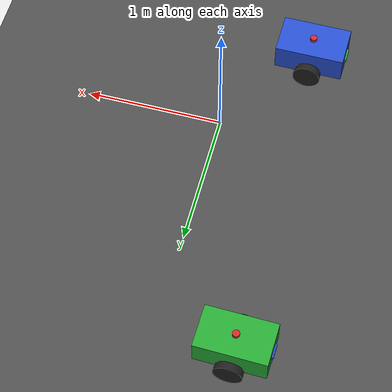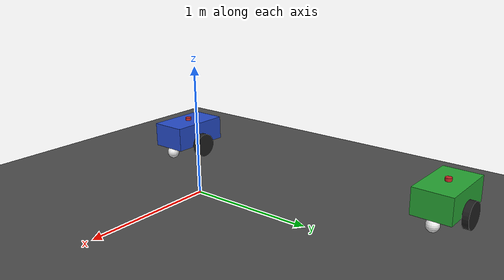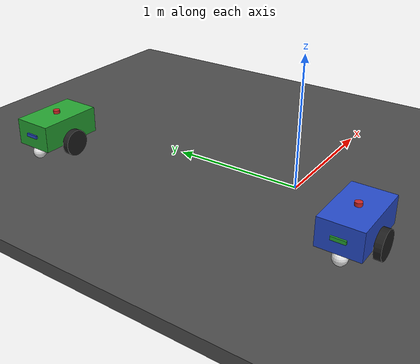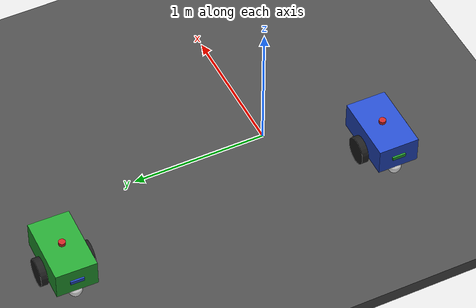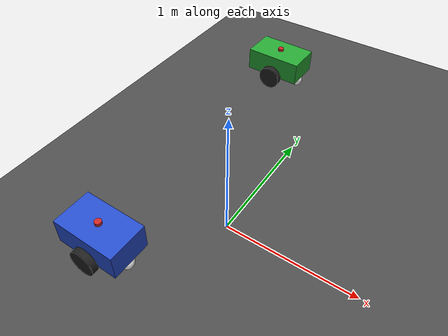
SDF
<sdf version="1.6">
 <world name="default">
  <light name="sun" type="directional">
   <pose>0 0 10 0 -0 0</pose>
   <diffuse>0.8 0.8 0.8 1</diffuse>
   <specular>0.2 0.2 0.2 1</specular>
   <attenuation>
    <range>1000</range>
    <constant>0.9</constant>
    <linear>0.01</linear>
    <quadratic>0.001</quadratic>
   </attenuation>
   <direction>-0.5 0.1 -0.9</direction>
  </light>
  <model name="ground_plane">
   <static>1</static>
   <link name="link">
    <collision name="collision">
     <geometry><plane><normal>0 0 1</normal><size>100 100</size></plane></geometry>
     <surface>
      <contact><collide_bitmask>65535</collide_bitmask></contact>
      <friction><ode><mu>100</mu><mu2>50</mu2></ode></friction>
     </surface>
    </collision>
    <visual name="visual">
     <cast_shadows>0</cast_shadows>
     <geometry><plane><normal>0 0 1</normal><size>100 100</size></plane></geometry>
     <material>
      <script><uri>file://media/materials/scripts/gazebo.material</uri><name>Gazebo/White</name></script>
     </material>
    </visual>
   </link>
  </model>
  <gravity>0 0 -9.8</gravity>
  <magnetic_field>6e-06 2.3e-05 -4.2e-05</magnetic_field>
  <atmosphere type="adiabatic"/>
  <physics name="default_physics" default="0" type="ode">
   <max_step_size>0.001</max_step_size>
   <real_time_factor>1</real_time_factor>
   <real_time_update_rate>1000</real_time_update_rate>
  </physics>
  <scene><ambient>0.4 0.4 0.4 1</ambient><background>0.7 0.7 0.7 1</background><shadows>1</shadows></scene>
  <spherical_coordinates>
   <surface_model>EARTH_WGS84</surface_model>
   <latitude_deg>0</latitude_deg>
   <longitude_deg>0</longitude_deg>
   <elevation>0</elevation>
   <heading_deg>0</heading_deg>
  </spherical_coordinates>
  <model name="egitim_robotu">
   <link name="base_footprint">
    <inertial>
     <pose>0.002427 0 0.002184 0 -0 0</pose>
     <mass>10.3</mass>
     <inertia>
      <ixx>0.110946</ixx>
      <ixy>0</ixy>
      <ixz>5.46117e-05</ixz>
      <iyy>0.25039</iyy>
      <iyz>0</iyz>
      <izz>0.289674</izz>
     </inertia>
    </inertial>
    <collision name="base_footprint_collision">
     <geometry><box><size>0.5 0.3 0.2</size></box></geometry>
    </collision>
    <collision name="base_footprint_fixed_joint_lump__camera_link_collision_1">
     <pose>0.25 0 0 0 -0 0</pose>
     <geometry><box><size>0.025 0.1 0.025</size></box></geometry>
    </collision>
    <collision name="base_footprint_fixed_joint_lump__laser_link_collision_2">
     <pose>0 0 0.1125 0 -0 0</pose>
     <geometry><cylinder><length>0.025</length><radius>0.025</radius></cylinder></geometry>
    </collision>
    <visual name="base_footprint_visual">
     <geometry><box><size>0.5 0.3 0.2</size></box></geometry>
     <material>
      <script><name>Gazebo/Blue</name><uri>file://media/materials/scripts/gazebo.material</uri></script>
     </material>
    </visual>
    <visual name="base_footprint_fixed_joint_lump__camera_link_visual_1">
     <pose>0.25 0 0 0 -0 0</pose>
     <geometry><box><size>0.025 0.1 0.025</size></box></geometry>
     <material>
      <script><name>Gazebo/Green</name><uri>file://media/materials/scripts/gazebo.material</uri></script>
     </material>
    </visual>
    <visual name="base_footprint_fixed_joint_lump__laser_link_visual_2">
     <pose>0 0 0.1125 0 -0 0</pose>
     <geometry><cylinder><length>0.025</length><radius>0.025</radius></cylinder></geometry>
     <material>
      <script><name>Gazebo/Red</name><uri>file://media/materials/scripts/gazebo.material</uri></script>
     </material>
    </visual>
    <sensor name="camera_link_camera" type="depth">
     <update_rate>20</update_rate>
     <camera name="__default__">
      <horizontal_fov>1.0472</horizontal_fov>
      <image><width>640</width><height>480</height><format>R8G8B8</format></image>
      <clip><near>0.05</near><far>3</far></clip>
     </camera>
     <plugin name="camera_link_controller" filename="libgazebo_ros_openni_kinect.so">
      <baseline>0.2</baseline>
      <alwaysOn>1</alwaysOn>
      <updateRate>1.0</updateRate>
      <imageTopicName>/camera/rgb/image_raw</imageTopicName>
      <cameraInfoTopicName>/camera/rgb/camera_info</cameraInfoTopicName>
      <depthImageTopicName>/camera/depth/image_raw</depthImageTopicName>
      <depthImageInfoTopicName>/camera/depth/camera_info</depthImageInfoTopicName>
      <pointCloudTopicName>/camera/depth/points</pointCloudTopicName>
      <frameName>camera_link</frameName>
      <pointCloudCutoff>0.5</pointCloudCutoff>
      <pointCloudCutoffMax>3.0</pointCloudCutoffMax>
      <distortionK1>0.00000001</distortionK1>
      <distortionK2>0.00000001</distortionK2>
      <distortionK3>0.00000001</distortionK3>
      <distortionT1>0.00000001</distortionT1>
      <distortionT2>0.00000001</distortionT2>
      <CxPrime>0</CxPrime>
      <Cx>0</Cx>
      <Cy>0</Cy>
      <focalLength>0</focalLength>
      <hackBaseline>0</hackBaseline>
      <robotNamespace>/</robotNamespace>
     </plugin>
     <pose>0.25 0 0 0 -0 0</pose>
    </sensor>
    <sensor name="head_hokuyo_sensor" type="gpu_ray">
     <visualize>0</visualize>
     <update_rate>40</update_rate>
     <ray>
      <scan>
       <horizontal>
        <samples>720</samples>
        <resolution>1</resolution>
        <min_angle>-3.1415</min_angle>
        <max_angle>3.1415</max_angle>
       </horizontal>
       <vertical><samples>1</samples><min_angle>0</min_angle><max_angle>0</max_angle></vertical>
      </scan>
      <range><min>0.1</min><max>10</max><resolution>0.01</resolution></range>
      <noise><type>gaussian</type><mean>0</mean><stddev>0.01</stddev></noise>
     </ray>
     <plugin name="gazebo_ros_head_hokuyo_controller" filename="libgazebo_ros_gpu_laser.so">
      <topicName>robot_1/laser/scan</topicName>
      <frameName>robot_1/laser_link</frameName>
      <robotNamespace>/</robotNamespace>
     </plugin>
     <pose>0 0 0.1125 0 -0 0</pose>
    </sensor>
   </link>
   <link name="caster_wheel_back_link">
    <pose>-0.2 0 -0.15 0 -0 0</pose>
    <inertial>
     <mass>0.05</mass>
     <inertia><ixx>5e-05</ixx><ixy>0</ixy><ixz>0</ixz><iyy>5e-05</iyy><iyz>0</iyz><izz>5e-05</izz></inertia>
    </inertial>
    <collision name="caster_wheel_back_link_collision">
     <geometry><sphere><radius>0.05</radius></sphere></geometry>
    </collision>
    <visual name="caster_wheel_back_link_visual">
     <geometry><sphere><radius>0.05</radius></sphere></geometry>
     <material>
      <script><name>Gazebo/White</name><uri>file://media/materials/scripts/gazebo.material</uri></script>
     </material>
    </visual>
   </link>
   <joint name="caster_wheel_back_base" type="revolute">
    <child>caster_wheel_back_link</child>
    <parent>base_footprint</parent>
    <axis>
     <xyz>1 1 1</xyz>
     <limit><lower>-1e+16</lower><upper>1e+16</upper></limit>
     <dynamics><spring_reference>0</spring_reference><spring_stiffness>0</spring_stiffness></dynamics>
     <use_parent_model_frame>0</use_parent_model_frame>
    </axis>
   </joint>
   <link name="caster_wheel_front_link">
    <pose>0.2 0 -0.15 0 -0 0</pose>
    <inertial>
     <mass>0.05</mass>
     <inertia><ixx>5e-05</ixx><ixy>0</ixy><ixz>0</ixz><iyy>5e-05</iyy><iyz>0</iyz><izz>5e-05</izz></inertia>
    </inertial>
    <collision name="caster_wheel_front_link_collision">
     <geometry><sphere><radius>0.05</radius></sphere></geometry>
    </collision>
    <visual name="caster_wheel_front_link_visual">
     <geometry><sphere><radius>0.05</radius></sphere></geometry>
     <material>
      <script><name>Gazebo/White</name><uri>file://media/materials/scripts/gazebo.material</uri></script>
     </material>
    </visual>
   </link>
   <joint name="caster_wheel_front_base" type="revolute">
    <child>caster_wheel_front_link</child>
    <parent>base_footprint</parent>
    <axis>
     <xyz>1 1 1</xyz>
     <limit><lower>-1e+16</lower><upper>1e+16</upper></limit>
     <dynamics><spring_reference>0</spring_reference><spring_stiffness>0</spring_stiffness></dynamics>
     <use_parent_model_frame>0</use_parent_model_frame>
    </axis>
   </joint>
   <link name="wheel_left_link">
    <pose>0 -0.175 -0.1 0 -0 0</pose>
    <inertial>
     <mass>0.5</mass>
     <inertia>
      <ixx>0.00135417</ixx>
      <ixy>0</ixy>
      <ixz>0</ixz>
      <iyy>0.00135417</iyy>
      <iyz>0</iyz>
      <izz>0.0025</izz>
     </inertia>
    </inertial>
    <collision name="wheel_left_link_collision">
     <pose>0 0 0 3.14159 1.57079 -1.57079</pose>
     <geometry><cylinder><length>0.05</length><radius>0.1</radius></cylinder></geometry>
    </collision>
    <visual name="wheel_left_link_visual">
     <pose>0 0 0 3.14159 1.57079 -1.57079</pose>
     <geometry><cylinder><length>0.05</length><radius>0.1</radius></cylinder></geometry>
     <material>
      <script><name>Gazebo/Black</name><uri>file://media/materials/scripts/gazebo.material</uri></script>
     </material>
    </visual>
   </link>
   <joint name="wheel_left_base" type="revolute">
    <child>wheel_left_link</child>
    <parent>base_footprint</parent>
    <axis>
     <xyz>0 1 0</xyz>
     <limit><lower>-1e+16</lower><upper>1e+16</upper></limit>
     <dynamics><spring_reference>0</spring_reference><spring_stiffness>0</spring_stiffness></dynamics>
     <use_parent_model_frame>0</use_parent_model_frame>
    </axis>
   </joint>
   <link name="wheel_right_link">
    <pose>0 0.175 -0.1 0 -0 0</pose>
    <inertial>
     <mass>0.5</mass>
     <inertia>
      <ixx>0.00135417</ixx>
      <ixy>0</ixy>
      <ixz>0</ixz>
      <iyy>0.00135417</iyy>
      <iyz>0</iyz>
      <izz>0.0025</izz>
     </inertia>
    </inertial>
    <collision name="wheel_right_link_collision">
     <pose>0 0 0 3.14159 1.57079 -1.57079</pose>
     <geometry><cylinder><length>0.05</length><radius>0.1</radius></cylinder></geometry>
    </collision>
    <visual name="wheel_right_link_visual">
     <pose>0 0 0 3.14159 1.57079 -1.57079</pose>
     <geometry><cylinder><length>0.05</length><radius>0.1</radius></cylinder></geometry>
     <material>
      <script><name>Gazebo/Black</name><uri>file://media/materials/scripts/gazebo.material</uri></script>
     </material>
    </visual>
   </link>
   <joint name="wheel_right_base" type="revolute">
    <child>wheel_right_link</child>
    <parent>base_footprint</parent>
    <axis>
     <xyz>0 1 0</xyz>
     <limit><lower>-1e+16</lower><upper>1e+16</upper></limit>
     <dynamics><spring_reference>0</spring_reference><spring_stiffness>0</spring_stiffness></dynamics>
     <use_parent_model_frame>0</use_parent_model_frame>
    </axis>
   </joint>
   <static>0</static>
   <plugin name="differential_drive_controller" filename="libgazebo_ros_diff_drive.so">
    <updateRate>10.0</updateRate>
    <leftJoint>wheel_left_base</leftJoint>
    <rightJoint>wheel_right_base</rightJoint>
    <wheelSeparation>0.35</wheelSeparation>
    <wheelDiameter>0.2</wheelDiameter>
    <wheelAcceleration>0.0</wheelAcceleration>
    <wheelTorque>5</wheelTorque>
    <commandTopic>robot_1/cmd_vel</commandTopic>
    <odometryTopic>robot_1/odom</odometryTopic>
    <odometryFrame>robot_1/odom</odometryFrame>
    <robotBaseFrame>base_footprint</robotBaseFrame>
    <odometrySource>1</odometrySource>
    <publishWheelTF>0</publishWheelTF>
    <publishOdom>1</publishOdom>
    <publishWheelJointState>0</publishWheelJointState>
    <legacyMode>1</legacyMode>
    <robotNamespace>/</robotNamespace>
   </plugin>
   <pose>-0.534705 -0.657038 0.250001 2e-06 2e-06 3.1341</pose>
  </model>
  <model name="egitim_robotu_2">
   <link name="base_footprint">
    <inertial>
     <pose>0.002427 0 0.002184 0 -0 0</pose>
     <mass>10.3</mass>
     <inertia>
      <ixx>0.110946</ixx>
      <ixy>0</ixy>
      <ixz>5.46117e-05</ixz>
      <iyy>0.25039</iyy>
      <iyz>0</iyz>
      <izz>0.289674</izz>
     </inertia>
    </inertial>
    <collision name="base_footprint_collision">
     <geometry><box><size>0.5 0.3 0.2</size></box></geometry>
    </collision>
    <collision name="base_footprint_fixed_joint_lump__camera_link_collision_1">
     <pose>0.25 0 0 0 -0 0</pose>
     <geometry><box><size>0.025 0.1 0.025</size></box></geometry>
    </collision>
    <collision name="base_footprint_fixed_joint_lump__laser_link_collision_2">
     <pose>0 0 0.1125 0 -0 0</pose>
     <geometry><cylinder><length>0.025</length><radius>0.025</radius></cylinder></geometry>
    </collision>
    <visual name="base_footprint_visual">
     <geometry><box><size>0.5 0.3 0.2</size></box></geometry>
     <material>
      <script><name>Gazebo/Green</name><uri>file://media/materials/scripts/gazebo.material</uri></script>
     </material>
    </visual>
    <visual name="base_footprint_fixed_joint_lump__camera_link_visual_1">
     <pose>0.25 0 0 0 -0 0</pose>
     <geometry><box><size>0.025 0.1 0.025</size></box></geometry>
     <material>
      <script><name>Gazebo/Blue</name><uri>file://media/materials/scripts/gazebo.material</uri></script>
     </material>
    </visual>
    <visual name="base_footprint_fixed_joint_lump__laser_link_visual_2">
     <pose>0 0 0.1125 0 -0 0</pose>
     <geometry><cylinder><length>0.025</length><radius>0.025</radius></cylinder></geometry>
     <material>
      <script><name>Gazebo/Red</name><uri>file://media/materials/scripts/gazebo.material</uri></script>
     </material>
    </visual>
    <sensor name="camera_link_camera" type="depth">
     <update_rate>20</update_rate>
     <camera name="__default__">
      <horizontal_fov>1.0472</horizontal_fov>
      <image><width>640</width><height>480</height><format>R8G8B8</format></image>
      <clip><near>0.05</near><far>3</far></clip>
     </camera>
     <plugin name="camera_link_controller" filename="libgazebo_ros_openni_kinect.so">
      <baseline>0.2</baseline>
      <alwaysOn>1</alwaysOn>
      <updateRate>1.0</updateRate>
      <imageTopicName>/camera/rgb/image_raw</imageTopicName>
      <cameraInfoTopicName>/camera/rgb/camera_info</cameraInfoTopicName>
      <depthImageTopicName>/camera/depth/image_raw</depthImageTopicName>
      <depthImageInfoTopicName>/camera/depth/camera_info</depthImageInfoTopicName>
      <pointCloudTopicName>/camera/depth/points</pointCloudTopicName>
      <frameName>camera_link</frameName>
      <pointCloudCutoff>0.5</pointCloudCutoff>
      <pointCloudCutoffMax>3.0</pointCloudCutoffMax>
      <distortionK1>0.00000001</distortionK1>
      <distortionK2>0.00000001</distortionK2>
      <distortionK3>0.00000001</distortionK3>
      <distortionT1>0.00000001</distortionT1>
      <distortionT2>0.00000001</distortionT2>
      <CxPrime>0</CxPrime>
      <Cx>0</Cx>
      <Cy>0</Cy>
      <focalLength>0</focalLength>
      <hackBaseline>0</hackBaseline>
      <robotNamespace>/</robotNamespace>
     </plugin>
     <pose>0.25 0 0 0 -0 0</pose>
    </sensor>
    <sensor name="head_hokuyo_sensor" type="gpu_ray">
     <visualize>0</visualize>
     <update_rate>40</update_rate>
     <ray>
      <scan>
       <horizontal>
        <samples>720</samples>
        <resolution>1</resolution>
        <min_angle>-3.1415</min_angle>
        <max_angle>3.1415</max_angle>
       </horizontal>
       <vertical><samples>1</samples><min_angle>0</min_angle><max_angle>0</max_angle></vertical>
      </scan>
      <range><min>0.1</min><max>10</max><resolution>0.01</resolution></range>
      <noise><type>gaussian</type><mean>0</mean><stddev>0.01</stddev></noise>
     </ray>
     <plugin name="gazebo_ros_head_hokuyo_controller" filename="libgazebo_ros_gpu_laser.so">
      <topicName>robot_2/laser/scan</topicName>
      <frameName>robot_2/laser_link</frameName>
      <robotNamespace>/</robotNamespace>
     </plugin>
     <pose>0 0 0.1125 0 -0 0</pose>
    </sensor>
   </link>
   <link name="caster_wheel_back_link">
    <pose>-0.2 0 -0.15 0 -0 0</pose>
    <inertial>
     <mass>0.05</mass>
     <inertia><ixx>5e-05</ixx><ixy>0</ixy><ixz>0</ixz><iyy>5e-05</iyy><iyz>0</iyz><izz>5e-05</izz></inertia>
    </inertial>
    <collision name="caster_wheel_back_link_collision">
     <geometry><sphere><radius>0.05</radius></sphere></geometry>
    </collision>
    <visual name="caster_wheel_back_link_visual">
     <geometry><sphere><radius>0.05</radius></sphere></geometry>
     <material>
      <script><name>Gazebo/White</name><uri>file://media/materials/scripts/gazebo.material</uri></script>
     </material>
    </visual>
   </link>
   <joint name="caster_wheel_back_base" type="revolute">
    <child>caster_wheel_back_link</child>
    <parent>base_footprint</parent>
    <axis>
     <xyz>1 1 1</xyz>
     <limit><lower>-1e+16</lower><upper>1e+16</upper></limit>
     <dynamics><spring_reference>0</spring_reference><spring_stiffness>0</spring_stiffness></dynamics>
     <use_parent_model_frame>0</use_parent_model_frame>
    </axis>
   </joint>
   <link name="caster_wheel_front_link">
    <pose>0.2 0 -0.15 0 -0 0</pose>
    <inertial>
     <mass>0.05</mass>
     <inertia><ixx>5e-05</ixx><ixy>0</ixy><ixz>0</ixz><iyy>5e-05</iyy><iyz>0</iyz><izz>5e-05</izz></inertia>
    </inertial>
    <collision name="caster_wheel_front_link_collision">
     <geometry><sphere><radius>0.05</radius></sphere></geometry>
    </collision>
    <visual name="caster_wheel_front_link_visual">
     <geometry><sphere><radius>0.05</radius></sphere></geometry>
     <material>
      <script><name>Gazebo/White</name><uri>file://media/materials/scripts/gazebo.material</uri></script>
     </material>
    </visual>
   </link>
   <joint name="caster_wheel_front_base" type="revolute">
    <child>caster_wheel_front_link</child>
    <parent>base_footprint</parent>
    <axis>
     <xyz>1 1 1</xyz>
     <limit><lower>-1e+16</lower><upper>1e+16</upper></limit>
     <dynamics><spring_reference>0</spring_reference><spring_stiffness>0</spring_stiffness></dynamics>
     <use_parent_model_frame>0</use_parent_model_frame>
    </axis>
   </joint>
   <link name="wheel_left_link">
    <pose>0 -0.175 -0.1 0 -0 0</pose>
    <inertial>
     <mass>0.5</mass>
     <inertia>
      <ixx>0.00135417</ixx>
      <ixy>0</ixy>
      <ixz>0</ixz>
      <iyy>0.00135417</iyy>
      <iyz>0</iyz>
      <izz>0.0025</izz>
     </inertia>
    </inertial>
    <collision name="wheel_left_link_collision">
     <pose>0 0 0 3.14159 1.57079 -1.57079</pose>
     <geometry><cylinder><length>0.05</length><radius>0.1</radius></cylinder></geometry>
    </collision>
    <visual name="wheel_left_link_visual">
     <pose>0 0 0 3.14159 1.57079 -1.57079</pose>
     <geometry><cylinder><length>0.05</length><radius>0.1</radius></cylinder></geometry>
     <material>
      <script><name>Gazebo/Black</name><uri>file://media/materials/scripts/gazebo.material</uri></script>
     </material>
    </visual>
   </link>
   <joint name="wheel_left_base" type="revolute">
    <child>wheel_left_link</child>
    <parent>base_footprint</parent>
    <axis>
     <xyz>0 1 0</xyz>
     <limit><lower>-1e+16</lower><upper>1e+16</upper></limit>
     <dynamics><spring_reference>0</spring_reference><spring_stiffness>0</spring_stiffness></dynamics>
     <use_parent_model_frame>0</use_parent_model_frame>
    </axis>
   </joint>
   <link name="wheel_right_link">
    <pose>0 0.175 -0.1 0 -0 0</pose>
    <inertial>
     <mass>0.5</mass>
     <inertia>
      <ixx>0.00135417</ixx>
      <ixy>0</ixy>
      <ixz>0</ixz>
      <iyy>0.00135417</iyy>
      <iyz>0</iyz>
      <izz>0.0025</izz>
     </inertia>
    </inertial>
    <collision name="wheel_right_link_collision">
     <pose>0 0 0 3.14159 1.57079 -1.57079</pose>
     <geometry><cylinder><length>0.05</length><radius>0.1</radius></cylinder></geometry>
    </collision>
    <visual name="wheel_right_link_visual">
     <pose>0 0 0 3.14159 1.57079 -1.57079</pose>
     <geometry><cylinder><length>0.05</length><radius>0.1</radius></cylinder></geometry>
     <material>
      <script><name>Gazebo/Black</name><uri>file://media/materials/scripts/gazebo.material</uri></script>
     </material>
    </visual>
   </link>
   <joint name="wheel_right_base" type="revolute">
    <child>wheel_right_link</child>
    <parent>base_footprint</parent>
    <axis>
     <xyz>0 1 0</xyz>
     <limit><lower>-1e+16</lower><upper>1e+16</upper></limit>
     <dynamics><spring_reference>0</spring_reference><spring_stiffness>0</spring_stiffness></dynamics>
     <use_parent_model_frame>0</use_parent_model_frame>
    </axis>
   </joint>
   <static>0</static>
   <plugin name="differential_drive_controller" filename="libgazebo_ros_diff_drive.so">
    <updateRate>10.0</updateRate>
    <leftJoint>wheel_left_base</leftJoint>
    <rightJoint>wheel_right_base</rightJoint>
    <wheelSeparation>0.35</wheelSeparation>
    <wheelDiameter>0.2</wheelDiameter>
    <wheelAcceleration>0.0</wheelAcceleration>
    <wheelTorque>5</wheelTorque>
    <commandTopic>robot_2/cmd_vel</commandTopic>
    <odometryTopic>robot_2/odom</odometryTopic>
    <odometryFrame>robot_2/odom</odometryFrame>
    <robotBaseFrame>base_footprint</robotBaseFrame>
    <odometrySource>1</odometrySource>
    <publishWheelTF>0</publishWheelTF>
    <publishOdom>1</publishOdom>
    <publishWheelJointState>0</publishWheelJointState>
    <legacyMode>1</legacyMode>
    <robotNamespace>/</robotNamespace>
   </plugin>
   <pose>-0.569014 1.78201 0.250001 -1e-06 -2e-06 3.11911</pose>
  </model>
  <audio><device>default</device></audio>
  <model name="asphalt_plane">
   <static>1</static>
   <link name="link">
    <collision name="collision"><geometry><box><size>20 20 0.1</size></box></geometry></collision>
    <visual name="visual">
     <cast_shadows>0</cast_shadows>
     <geometry><box><size>20 20 0.1</size></box></geometry>
     <material>
      <script>
       <uri>model://asphalt_plane/materials/scripts</uri>
       <uri>model://asphalt_plane/materials/textures</uri>
       <name>vrc/asphalt</name>
      </script>
     </material>
    </visual>
   </link>
   <pose>-0.043661 0.030703 0 0 -0 0</pose>
  </model>
 </world>
</sdf>
